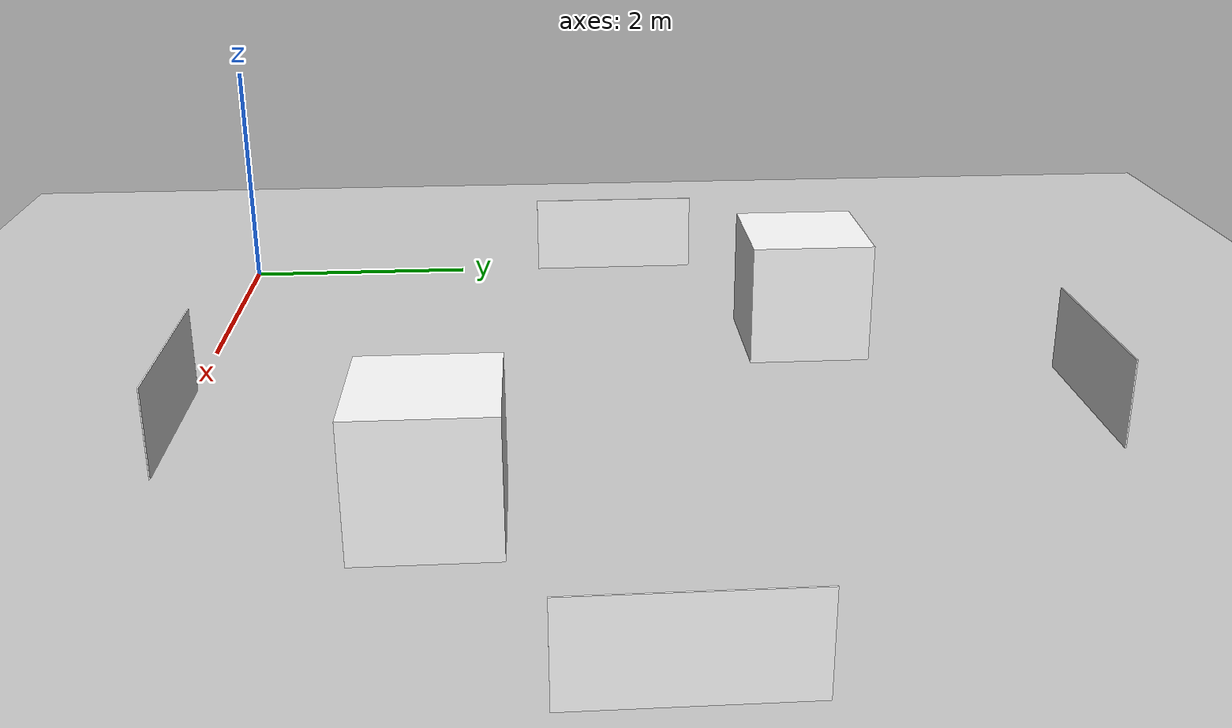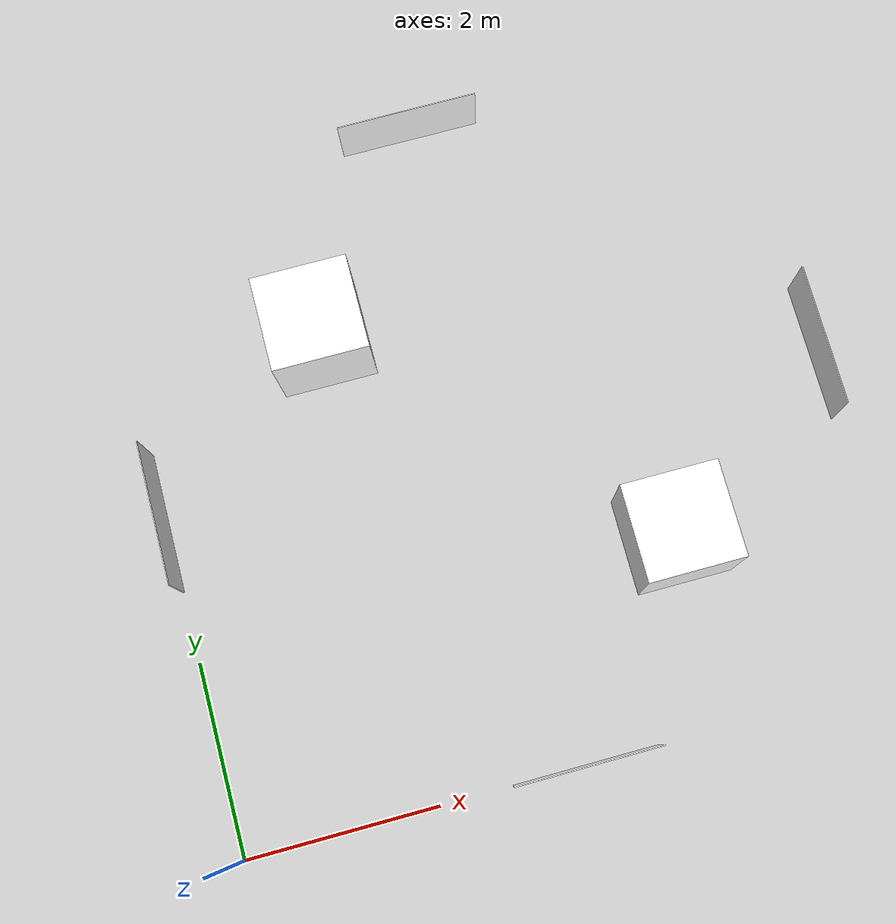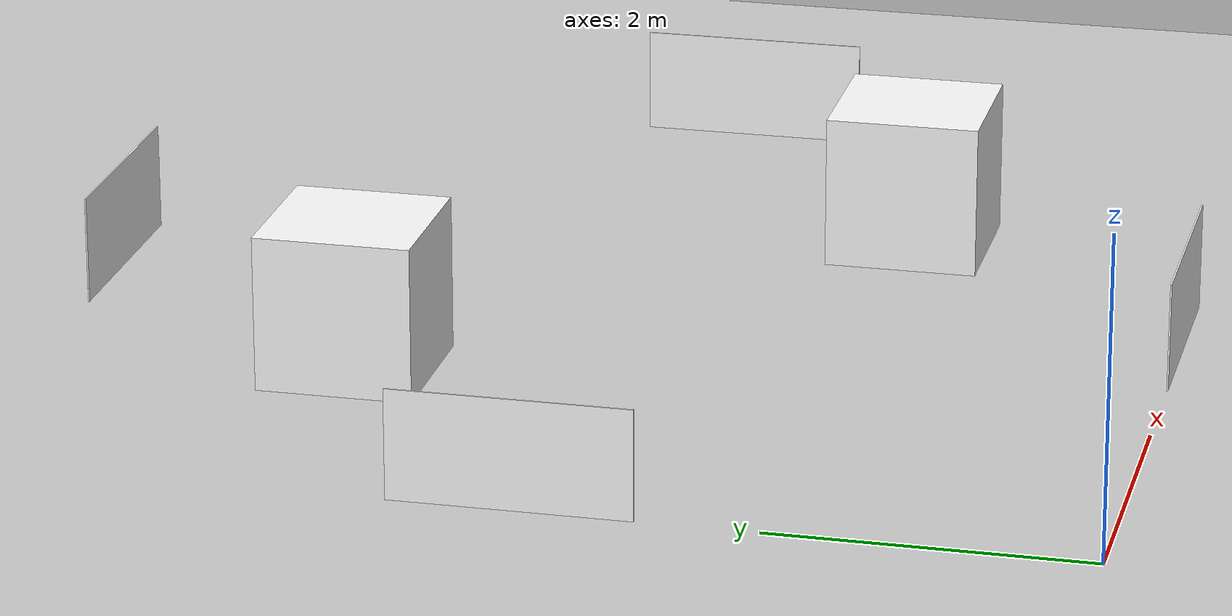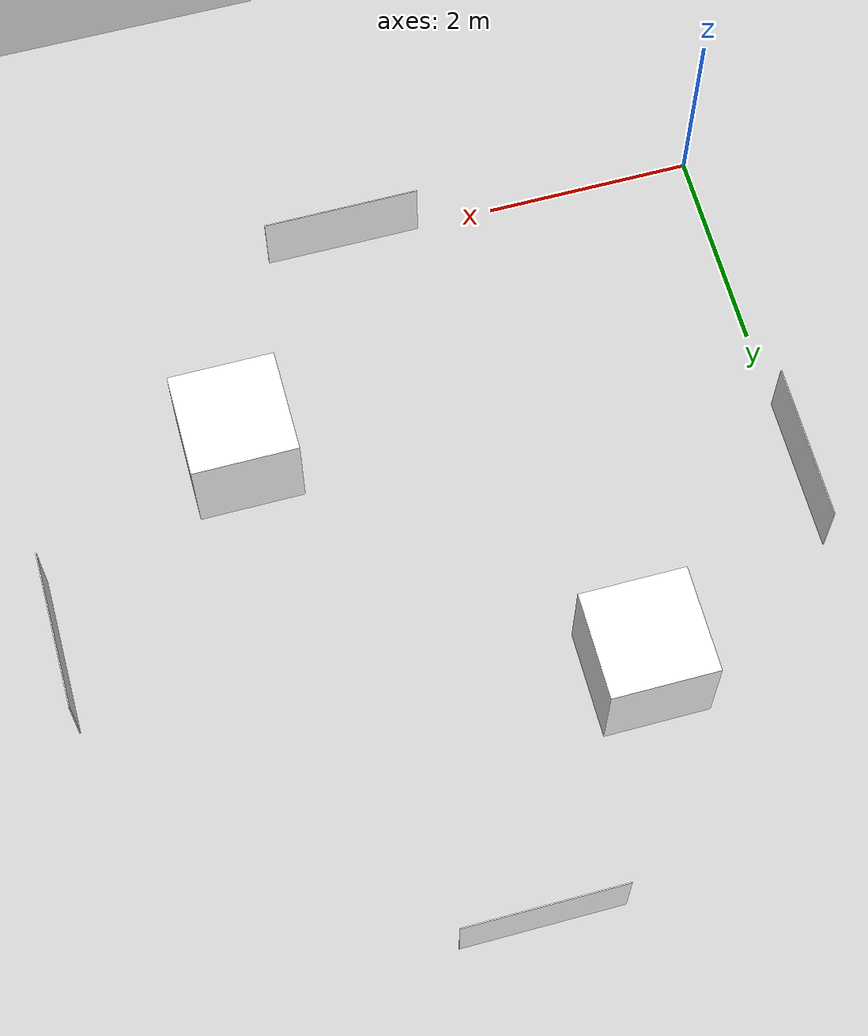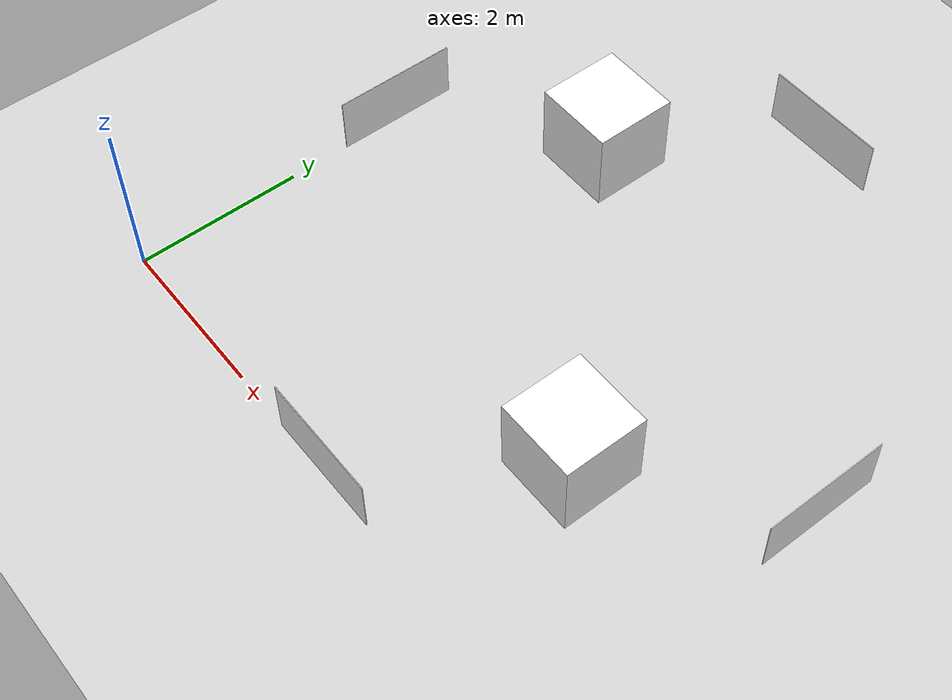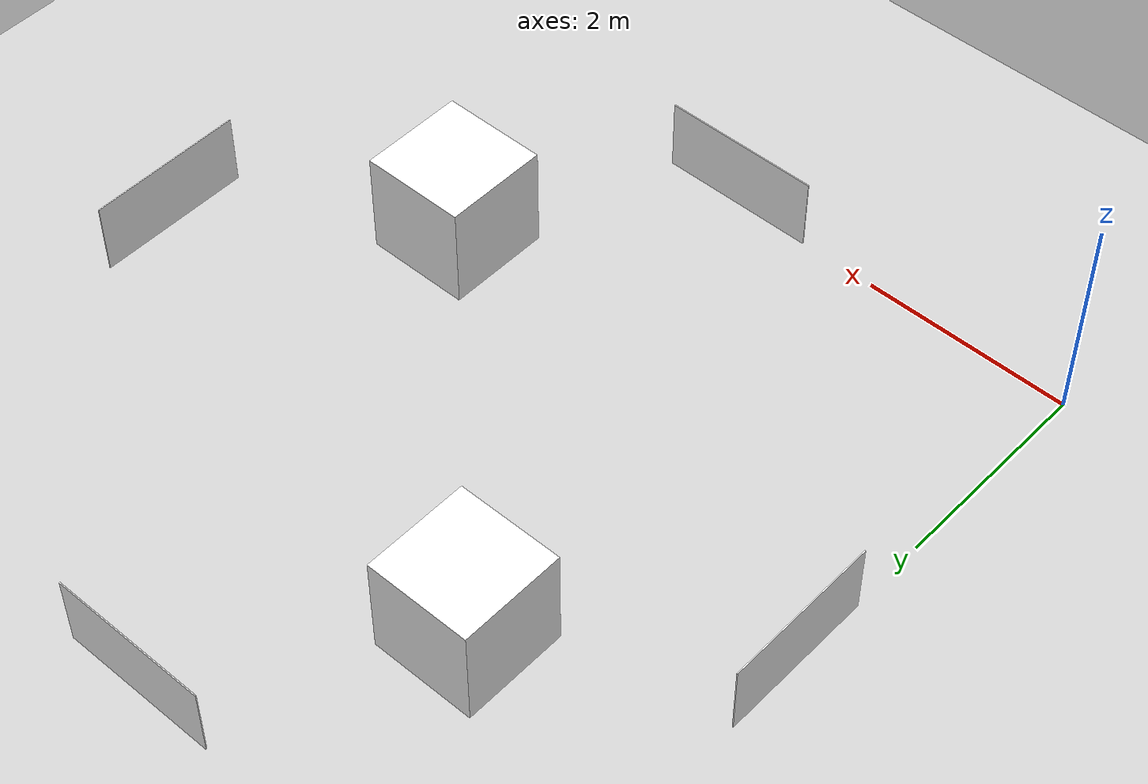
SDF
<sdf version="1.6">
 <world name="circuito_cuadrado">
  <include><uri>model://sun</uri></include>
  <include><uri>model://ground_plane</uri></include>
  <model name="wall_left">
   <static>true</static>
   <link name="link">
    <visual name="visual">
     <geometry><box><size>1.5 0.01 0.7</size></box></geometry>
     <material><ambient>1 1 1 1</ambient></material>
    </visual>
    <collision name="collision"><geometry><box><size>1.5 0.01 0.7</size></box></geometry></collision>
   </link>
   <pose>0 3.5 0.35 0 0 1.5708</pose>
  </model>
  <model name="wall_right">
   <static>true</static>
   <link name="link">
    <visual name="visual">
     <geometry><box><size>1.5 0.01 0.7</size></box></geometry>
     <material><ambient>1 1 1 1</ambient></material>
    </visual>
    <collision name="collision"><geometry><box><size>1.5 0.01 0.7</size></box></geometry></collision>
   </link>
   <pose>7 3.5 0.35 0 0 1.5708</pose>
  </model>
  <model name="wall_top">
   <static>true</static>
   <link name="link">
    <visual name="visual">
     <geometry><box><size>1.5 0.01 0.7</size></box></geometry>
     <material><ambient>1 1 1 1</ambient></material>
    </visual>
    <collision name="collision"><geometry><box><size>1.5 0.01 0.7</size></box></geometry></collision>
   </link>
   <pose>3.5 7 0.35 0 0 0</pose>
  </model>
  <model name="wall_bottom">
   <static>true</static>
   <link name="link">
    <visual name="visual">
     <geometry><box><size>1.5 0.01 0.7</size></box></geometry>
     <material><ambient>1 1 1 1</ambient></material>
    </visual>
    <collision name="collision"><geometry><box><size>1.5 0.01 0.7</size></box></geometry></collision>
   </link>
   <pose>3.5 0 0.35 0 0 0</pose>
  </model>
  <model name="Obsatacle">
   <static>false</static>
   <link name="link">
    <visual name="visual">
     <geometry><box><size>1 1 1</size></box></geometry>
     <material><ambient>1 1 1 1</ambient></material>
    </visual>
    <collision name="collision"><geometry><box><size>1 1 1</size></box></geometry></collision>
   </link>
   <pose>2 5 0.5 0 0 0</pose>
  </model>
  <model name="Obsatacle_2">
   <static>false</static>
   <link name="link">
    <visual name="visual">
     <geometry><box><size>1 1 1</size></box></geometry>
     <material><ambient>1 1 1 1</ambient></material>
    </visual>
    <collision name="collision"><geometry><box><size>1 1 1</size></box></geometry></collision>
   </link>
   <pose>5 2 0.5 0 0 0</pose>
  </model>
 </world>
</sdf>
